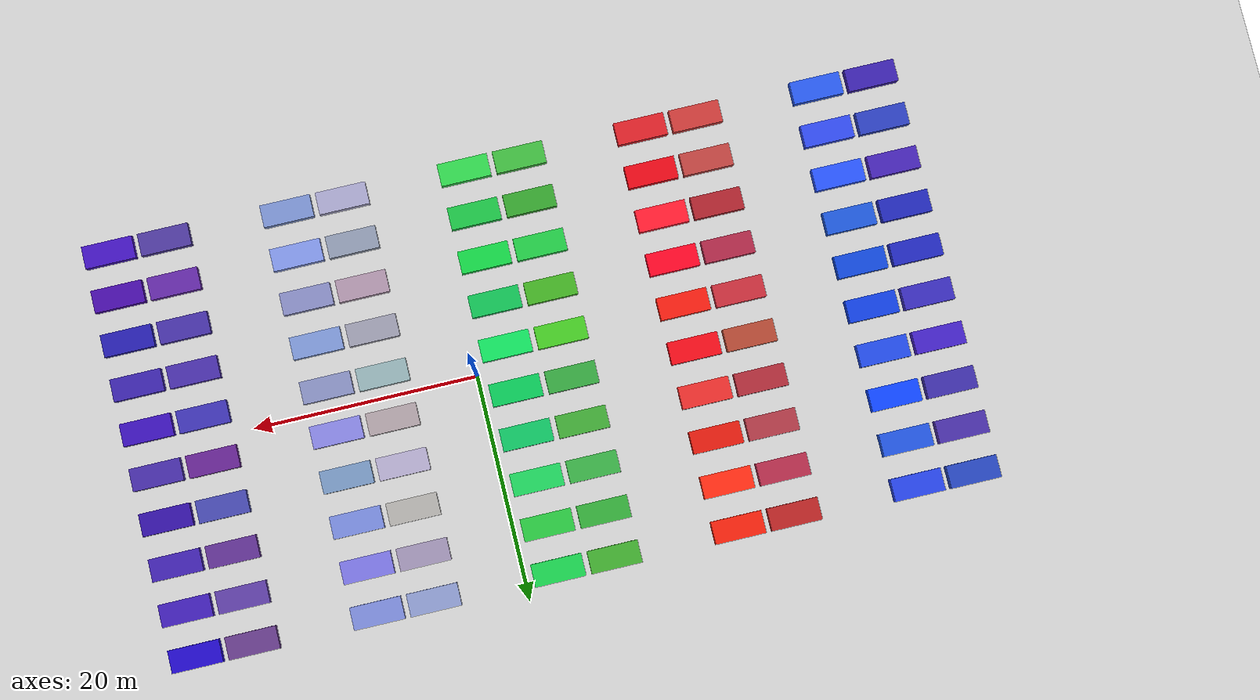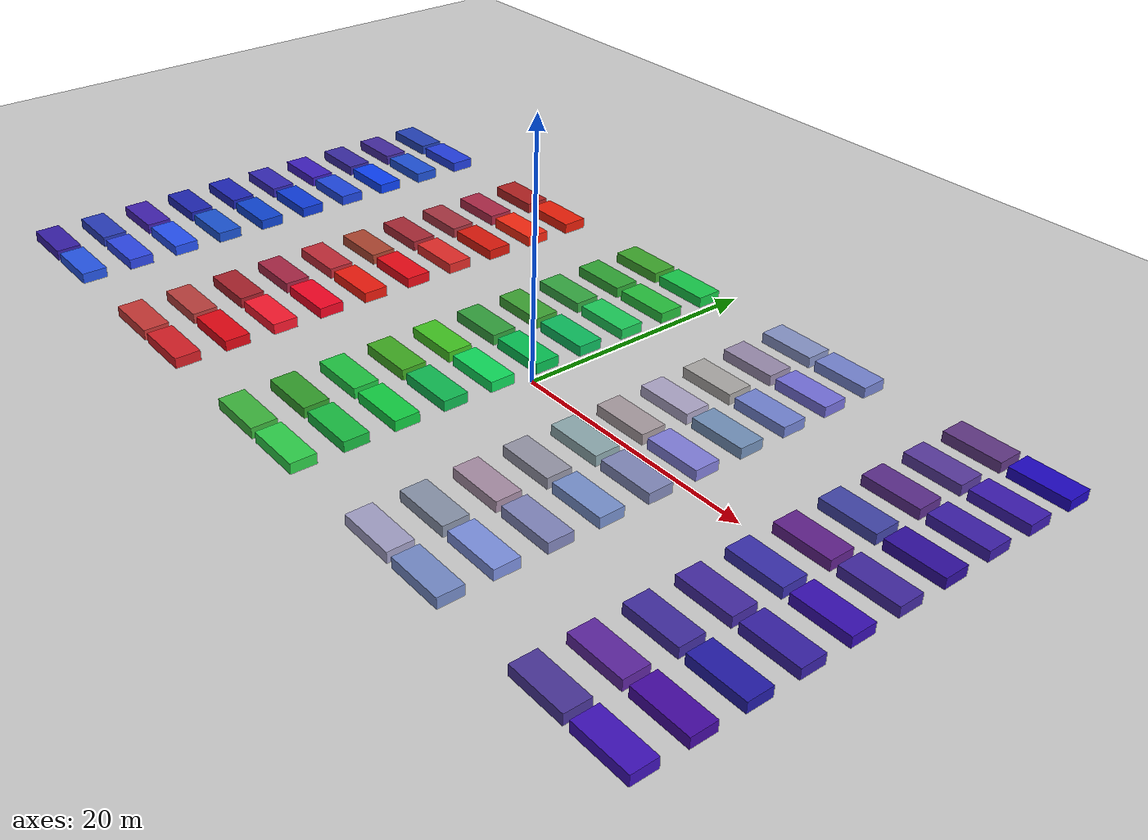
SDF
<?xml version="1.0" ?>
<sdf version="1.6">
  <world name="parking_lot">

    <physics name="1ms" type="ignored">
      <max_step_size>0.001</max_step_size>
      <real_time_factor>1.0</real_time_factor>
    </physics>

    <plugin filename="ignition-gazebo-contact-system" name="gz::sim::systems::Contact" />
    <plugin filename="ignition-gazebo-imu-system" name="gz::sim::systems::Imu" />
    <plugin filename="ignition-gazebo-physics-system" name="gz::sim::systems::Physics" />
    <plugin filename="ignition-gazebo-scene-broadcaster-system" name="gz::sim::systems::SceneBroadcaster" />
    <plugin filename="ignition-gazebo-sensors-system" name="gz::sim::systems::Sensors" />
    <plugin filename="ignition-gazebo-user-commands-system" name="gz::sim::systems::UserCommands" />

    <spherical_coordinates>
      <surface_model>EARTH_WGS84</surface_model>
      <world_frame_orientation>ENU</world_frame_orientation>
      <latitude_deg>50.088384</latitude_deg>
      <longitude_deg>19.939128</longitude_deg>
      <elevation>0</elevation>
      <heading_deg>0</heading_deg>
    </spherical_coordinates>

    <light type="directional" name="sun">
      <cast_shadows>true</cast_shadows>
      <pose>0 0 10 0 0 0</pose>
      <diffuse>0.8 0.8 0.8 1</diffuse>
      <specular>0.2 0.2 0.2 1</specular>
      <attenuation>
        <range>1000</range>
        <constant>0.9</constant>
        <linear>0.01</linear>
        <quadratic>0.001</quadratic>
      </attenuation>
      <direction>-0.5 0.1 -0.9</direction>
    </light>

    <model name="ground_plane">
      <static>true</static>
      <link name="link">
        <collision name="collision">
          <geometry>
            <plane>
              <normal>0 0 1</normal>
              <size>100 100</size>
            </plane>
          </geometry>
        </collision>
        <visual name="visual">
          <geometry>
            <plane>
              <normal>0 0 1</normal>
              <size>100 100</size>
            </plane>
          </geometry>
          <material>
            <ambient>0.8 0.8 0.8 1</ambient>
            <diffuse>0.8 0.8 0.8 1</diffuse>
            <specular>0.8 0.8 0.8 1</specular>
          </material>
        </visual>
      </link>
    </model>

    <model name="car_0_0">
      <static>true</static>
      <pose>-40.0 -18.0 0 0 0 0</pose>
      <link name="body">
        <collision name="collision">
          <geometry>
            <box>
              <size>4.5 2.0 1.5</size>
            </box>
          </geometry>
        </collision>
        <visual name="visual">
          <geometry>
            <box>
              <size>4.5 2.0 1.5</size>
            </box>
          </geometry>
          <material>
            <ambient>0.22 0.12 0.66 1</ambient>
            <diffuse>0.22 0.12 0.66 1</diffuse>
          </material>
        </visual>
      </link>
    </model>
    <model name="car_0_1">
      <static>true</static>
      <pose>-40.0 -14.0 0 0 0 0</pose>
      <link name="body">
        <collision name="collision">
          <geometry>
            <box>
              <size>4.5 2.0 1.5</size>
            </box>
          </geometry>
        </collision>
        <visual name="visual">
          <geometry>
            <box>
              <size>4.5 2.0 1.5</size>
            </box>
          </geometry>
          <material>
            <ambient>0.16 0.24 0.73 1</ambient>
            <diffuse>0.16 0.24 0.73 1</diffuse>
          </material>
        </visual>
      </link>
    </model>
    <model name="car_0_2">
      <static>true</static>
      <pose>-40.0 -10.0 0 0 0 0</pose>
      <link name="body">
        <collision name="collision">
          <geometry>
            <box>
              <size>4.5 2.0 1.5</size>
            </box>
          </geometry>
        </collision>
        <visual name="visual">
          <geometry>
            <box>
              <size>4.5 2.0 1.5</size>
            </box>
          </geometry>
          <material>
            <ambient>0.26 0.13 0.69 1</ambient>
            <diffuse>0.26 0.13 0.69 1</diffuse>
          </material>
        </visual>
      </link>
    </model>
    <model name="car_0_3">
      <static>true</static>
      <pose>-40.0 -6.0 0 0 0 0</pose>
      <link name="body">
        <collision name="collision">
          <geometry>
            <box>
              <size>4.5 2.0 1.5</size>
            </box>
          </geometry>
        </collision>
        <visual name="visual">
          <geometry>
            <box>
              <size>4.5 2.0 1.5</size>
            </box>
          </geometry>
          <material>
            <ambient>0.12 0.15 0.70 1</ambient>
            <diffuse>0.12 0.15 0.70 1</diffuse>
          </material>
        </visual>
      </link>
    </model>
    <model name="car_0_4">
      <static>true</static>
      <pose>-40.0 -2.0 0 0 0 0</pose>
      <link name="body">
        <collision name="collision">
          <geometry>
            <box>
              <size>4.5 2.0 1.5</size>
            </box>
          </geometry>
        </collision>
        <visual name="visual">
          <geometry>
            <box>
              <size>4.5 2.0 1.5</size>
            </box>
          </geometry>
          <material>
            <ambient>0.12 0.15 0.72 1</ambient>
            <diffuse>0.12 0.15 0.72 1</diffuse>
          </material>
        </visual>
      </link>
    </model>
    <model name="car_0_5">
      <static>true</static>
      <pose>-40.0 2.0 0 0 0 0</pose>
      <link name="body">
        <collision name="collision">
          <geometry>
            <box>
              <size>4.5 2.0 1.5</size>
            </box>
          </geometry>
        </collision>
        <visual name="visual">
          <geometry>
            <box>
              <size>4.5 2.0 1.5</size>
            </box>
          </geometry>
          <material>
            <ambient>0.21 0.16 0.71 1</ambient>
            <diffuse>0.21 0.16 0.71 1</diffuse>
          </material>
        </visual>
      </link>
    </model>
    <model name="car_0_6">
      <static>true</static>
      <pose>-40.0 6.0 0 0 0 0</pose>
      <link name="body">
        <collision name="collision">
          <geometry>
            <box>
              <size>4.5 2.0 1.5</size>
            </box>
          </geometry>
        </collision>
        <visual name="visual">
          <geometry>
            <box>
              <size>4.5 2.0 1.5</size>
            </box>
          </geometry>
          <material>
            <ambient>0.25 0.12 0.75 1</ambient>
            <diffuse>0.25 0.12 0.75 1</diffuse>
          </material>
        </visual>
      </link>
    </model>
    <model name="car_0_7">
      <static>true</static>
      <pose>-40.0 10.0 0 0 0 0</pose>
      <link name="body">
        <collision name="collision">
          <geometry>
            <box>
              <size>4.5 2.0 1.5</size>
            </box>
          </geometry>
        </collision>
        <visual name="visual">
          <geometry>
            <box>
              <size>4.5 2.0 1.5</size>
            </box>
          </geometry>
          <material>
            <ambient>0.23 0.17 0.64 1</ambient>
            <diffuse>0.23 0.17 0.64 1</diffuse>
          </material>
        </visual>
      </link>
    </model>
    <model name="car_0_8">
      <static>true</static>
      <pose>-40.0 14.0 0 0 0 0</pose>
      <link name="body">
        <collision name="collision">
          <geometry>
            <box>
              <size>4.5 2.0 1.5</size>
            </box>
          </geometry>
        </collision>
        <visual name="visual">
          <geometry>
            <box>
              <size>4.5 2.0 1.5</size>
            </box>
          </geometry>
          <material>
            <ambient>0.27 0.17 0.63 1</ambient>
            <diffuse>0.27 0.17 0.63 1</diffuse>
          </material>
        </visual>
      </link>
    </model>
    <model name="car_0_9">
      <static>true</static>
      <pose>-40.0 18.0 0 0 0 0</pose>
      <link name="body">
        <collision name="collision">
          <geometry>
            <box>
              <size>4.5 2.0 1.5</size>
            </box>
          </geometry>
        </collision>
        <visual name="visual">
          <geometry>
            <box>
              <size>4.5 2.0 1.5</size>
            </box>
          </geometry>
          <material>
            <ambient>0.14 0.26 0.72 1</ambient>
            <diffuse>0.14 0.26 0.72 1</diffuse>
          </material>
        </visual>
      </link>
    </model>
    <model name="car_1_0">
      <static>true</static>
      <pose>-35.0 -18.0 0 0 0 0</pose>
      <link name="body">
        <collision name="collision">
          <geometry>
            <box>
              <size>4.5 2.0 1.5</size>
            </box>
          </geometry>
        </collision>
        <visual name="visual">
          <geometry>
            <box>
              <size>4.5 2.0 1.5</size>
            </box>
          </geometry>
          <material>
            <ambient>0.15 0.34 0.91 1</ambient>
            <diffuse>0.15 0.34 0.91 1</diffuse>
          </material>
        </visual>
      </link>
    </model>
    <model name="car_1_1">
      <static>true</static>
      <pose>-35.0 -14.0 0 0 0 0</pose>
      <link name="body">
        <collision name="collision">
          <geometry>
            <box>
              <size>4.5 2.0 1.5</size>
            </box>
          </geometry>
        </collision>
        <visual name="visual">
          <geometry>
            <box>
              <size>4.5 2.0 1.5</size>
            </box>
          </geometry>
          <material>
            <ambient>0.18 0.28 0.91 1</ambient>
            <diffuse>0.18 0.28 0.91 1</diffuse>
          </material>
        </visual>
      </link>
    </model>
    <model name="car_1_2">
      <static>true</static>
      <pose>-35.0 -10.0 0 0 0 0</pose>
      <link name="body">
        <collision name="collision">
          <geometry>
            <box>
              <size>4.5 2.0 1.5</size>
            </box>
          </geometry>
        </collision>
        <visual name="visual">
          <geometry>
            <box>
              <size>4.5 2.0 1.5</size>
            </box>
          </geometry>
          <material>
            <ambient>0.15 0.32 0.96 1</ambient>
            <diffuse>0.15 0.32 0.96 1</diffuse>
          </material>
        </visual>
      </link>
    </model>
    <model name="car_1_3">
      <static>true</static>
      <pose>-35.0 -6.0 0 0 0 0</pose>
      <link name="body">
        <collision name="collision">
          <geometry>
            <box>
              <size>4.5 2.0 1.5</size>
            </box>
          </geometry>
        </collision>
        <visual name="visual">
          <geometry>
            <box>
              <size>4.5 2.0 1.5</size>
            </box>
          </geometry>
          <material>
            <ambient>0.11 0.33 0.83 1</ambient>
            <diffuse>0.11 0.33 0.83 1</diffuse>
          </material>
        </visual>
      </link>
    </model>
    <model name="car_1_4">
      <static>true</static>
      <pose>-35.0 -2.0 0 0 0 0</pose>
      <link name="body">
        <collision name="collision">
          <geometry>
            <box>
              <size>4.5 2.0 1.5</size>
            </box>
          </geometry>
        </collision>
        <visual name="visual">
          <geometry>
            <box>
              <size>4.5 2.0 1.5</size>
            </box>
          </geometry>
          <material>
            <ambient>0.06 0.27 0.83 1</ambient>
            <diffuse>0.06 0.27 0.83 1</diffuse>
          </material>
        </visual>
      </link>
    </model>
    <model name="car_1_5">
      <static>true</static>
      <pose>-35.0 2.0 0 0 0 0</pose>
      <link name="body">
        <collision name="collision">
          <geometry>
            <box>
              <size>4.5 2.0 1.5</size>
            </box>
          </geometry>
        </collision>
        <visual name="visual">
          <geometry>
            <box>
              <size>4.5 2.0 1.5</size>
            </box>
          </geometry>
          <material>
            <ambient>0.06 0.24 0.86 1</ambient>
            <diffuse>0.06 0.24 0.86 1</diffuse>
          </material>
        </visual>
      </link>
    </model>
    <model name="car_1_6">
      <static>true</static>
      <pose>-35.0 6.0 0 0 0 0</pose>
      <link name="body">
        <collision name="collision">
          <geometry>
            <box>
              <size>4.5 2.0 1.5</size>
            </box>
          </geometry>
        </collision>
        <visual name="visual">
          <geometry>
            <box>
              <size>4.5 2.0 1.5</size>
            </box>
          </geometry>
          <material>
            <ambient>0.12 0.28 0.88 1</ambient>
            <diffuse>0.12 0.28 0.88 1</diffuse>
          </material>
        </visual>
      </link>
    </model>
    <model name="car_1_7">
      <static>true</static>
      <pose>-35.0 10.0 0 0 0 0</pose>
      <link name="body">
        <collision name="collision">
          <geometry>
            <box>
              <size>4.5 2.0 1.5</size>
            </box>
          </geometry>
        </collision>
        <visual name="visual">
          <geometry>
            <box>
              <size>4.5 2.0 1.5</size>
            </box>
          </geometry>
          <material>
            <ambient>0.05 0.26 0.97 1</ambient>
            <diffuse>0.05 0.26 0.97 1</diffuse>
          </material>
        </visual>
      </link>
    </model>
    <model name="car_1_8">
      <static>true</static>
      <pose>-35.0 14.0 0 0 0 0</pose>
      <link name="body">
        <collision name="collision">
          <geometry>
            <box>
              <size>4.5 2.0 1.5</size>
            </box>
          </geometry>
        </collision>
        <visual name="visual">
          <geometry>
            <box>
              <size>4.5 2.0 1.5</size>
            </box>
          </geometry>
          <material>
            <ambient>0.12 0.32 0.85 1</ambient>
            <diffuse>0.12 0.32 0.85 1</diffuse>
          </material>
        </visual>
      </link>
    </model>
    <model name="car_1_9">
      <static>true</static>
      <pose>-35.0 18.0 0 0 0 0</pose>
      <link name="body">
        <collision name="collision">
          <geometry>
            <box>
              <size>4.5 2.0 1.5</size>
            </box>
          </geometry>
        </collision>
        <visual name="visual">
          <geometry>
            <box>
              <size>4.5 2.0 1.5</size>
            </box>
          </geometry>
          <material>
            <ambient>0.14 0.25 0.88 1</ambient>
            <diffuse>0.14 0.25 0.88 1</diffuse>
          </material>
        </visual>
      </link>
    </model>
    <model name="car_2_0">
      <static>true</static>
      <pose>-24.0 -18.0 0 0 0 0</pose>
      <link name="body">
        <collision name="collision">
          <geometry>
            <box>
              <size>4.5 2.0 1.5</size>
            </box>
          </geometry>
        </collision>
        <visual name="visual">
          <geometry>
            <box>
              <size>4.5 2.0 1.5</size>
            </box>
          </geometry>
          <material>
            <ambient>0.78 0.22 0.21 1</ambient>
            <diffuse>0.78 0.22 0.21 1</diffuse>
          </material>
        </visual>
      </link>
    </model>
    <model name="car_2_1">
      <static>true</static>
      <pose>-24.0 -14.0 0 0 0 0</pose>
      <link name="body">
        <collision name="collision">
          <geometry>
            <box>
              <size>4.5 2.0 1.5</size>
            </box>
          </geometry>
        </collision>
        <visual name="visual">
          <geometry>
            <box>
              <size>4.5 2.0 1.5</size>
            </box>
          </geometry>
          <material>
            <ambient>0.73 0.25 0.24 1</ambient>
            <diffuse>0.73 0.25 0.24 1</diffuse>
          </material>
        </visual>
      </link>
    </model>
    <model name="car_2_2">
      <static>true</static>
      <pose>-24.0 -10.0 0 0 0 0</pose>
      <link name="body">
        <collision name="collision">
          <geometry>
            <box>
              <size>4.5 2.0 1.5</size>
            </box>
          </geometry>
        </collision>
        <visual name="visual">
          <geometry>
            <box>
              <size>4.5 2.0 1.5</size>
            </box>
          </geometry>
          <material>
            <ambient>0.66 0.13 0.17 1</ambient>
            <diffuse>0.66 0.13 0.17 1</diffuse>
          </material>
        </visual>
      </link>
    </model>
    <model name="car_2_3">
      <static>true</static>
      <pose>-24.0 -6.0 0 0 0 0</pose>
      <link name="body">
        <collision name="collision">
          <geometry>
            <box>
              <size>4.5 2.0 1.5</size>
            </box>
          </geometry>
        </collision>
        <visual name="visual">
          <geometry>
            <box>
              <size>4.5 2.0 1.5</size>
            </box>
          </geometry>
          <material>
            <ambient>0.66 0.15 0.27 1</ambient>
            <diffuse>0.66 0.15 0.27 1</diffuse>
          </material>
        </visual>
      </link>
    </model>
    <model name="car_2_4">
      <static>true</static>
      <pose>-24.0 -2.0 0 0 0 0</pose>
      <link name="body">
        <collision name="collision">
          <geometry>
            <box>
              <size>4.5 2.0 1.5</size>
            </box>
          </geometry>
        </collision>
        <visual name="visual">
          <geometry>
            <box>
              <size>4.5 2.0 1.5</size>
            </box>
          </geometry>
          <material>
            <ambient>0.76 0.17 0.22 1</ambient>
            <diffuse>0.76 0.17 0.22 1</diffuse>
          </material>
        </visual>
      </link>
    </model>
    <model name="car_2_5">
      <static>true</static>
      <pose>-24.0 2.0 0 0 0 0</pose>
      <link name="body">
        <collision name="collision">
          <geometry>
            <box>
              <size>4.5 2.0 1.5</size>
            </box>
          </geometry>
        </collision>
        <visual name="visual">
          <geometry>
            <box>
              <size>4.5 2.0 1.5</size>
            </box>
          </geometry>
          <material>
            <ambient>0.68 0.27 0.19 1</ambient>
            <diffuse>0.68 0.27 0.19 1</diffuse>
          </material>
        </visual>
      </link>
    </model>
    <model name="car_2_6">
      <static>true</static>
      <pose>-24.0 6.0 0 0 0 0</pose>
      <link name="body">
        <collision name="collision">
          <geometry>
            <box>
              <size>4.5 2.0 1.5</size>
            </box>
          </geometry>
        </collision>
        <visual name="visual">
          <geometry>
            <box>
              <size>4.5 2.0 1.5</size>
            </box>
          </geometry>
          <material>
            <ambient>0.66 0.16 0.21 1</ambient>
            <diffuse>0.66 0.16 0.21 1</diffuse>
          </material>
        </visual>
      </link>
    </model>
    <model name="car_2_7">
      <static>true</static>
      <pose>-24.0 10.0 0 0 0 0</pose>
      <link name="body">
        <collision name="collision">
          <geometry>
            <box>
              <size>4.5 2.0 1.5</size>
            </box>
          </geometry>
        </collision>
        <visual name="visual">
          <geometry>
            <box>
              <size>4.5 2.0 1.5</size>
            </box>
          </geometry>
          <material>
            <ambient>0.66 0.21 0.26 1</ambient>
            <diffuse>0.66 0.21 0.26 1</diffuse>
          </material>
        </visual>
      </link>
    </model>
    <model name="car_2_8">
      <static>true</static>
      <pose>-24.0 14.0 0 0 0 0</pose>
      <link name="body">
        <collision name="collision">
          <geometry>
            <box>
              <size>4.5 2.0 1.5</size>
            </box>
          </geometry>
        </collision>
        <visual name="visual">
          <geometry>
            <box>
              <size>4.5 2.0 1.5</size>
            </box>
          </geometry>
          <material>
            <ambient>0.68 0.16 0.28 1</ambient>
            <diffuse>0.68 0.16 0.28 1</diffuse>
          </material>
        </visual>
      </link>
    </model>
    <model name="car_2_9">
      <static>true</static>
      <pose>-24.0 18.0 0 0 0 0</pose>
      <link name="body">
        <collision name="collision">
          <geometry>
            <box>
              <size>4.5 2.0 1.5</size>
            </box>
          </geometry>
        </collision>
        <visual name="visual">
          <geometry>
            <box>
              <size>4.5 2.0 1.5</size>
            </box>
          </geometry>
          <material>
            <ambient>0.70 0.13 0.13 1</ambient>
            <diffuse>0.70 0.13 0.13 1</diffuse>
          </material>
        </visual>
      </link>
    </model>
    <model name="car_3_0">
      <static>true</static>
      <pose>-19.0 -18.0 0 0 0 0</pose>
      <link name="body">
        <collision name="collision">
          <geometry>
            <box>
              <size>4.5 2.0 1.5</size>
            </box>
          </geometry>
        </collision>
        <visual name="visual">
          <geometry>
            <box>
              <size>4.5 2.0 1.5</size>
            </box>
          </geometry>
          <material>
            <ambient>0.84 0.12 0.15 1</ambient>
            <diffuse>0.84 0.12 0.15 1</diffuse>
          </material>
        </visual>
      </link>
    </model>
    <model name="car_3_1">
      <static>true</static>
      <pose>-19.0 -14.0 0 0 0 0</pose>
      <link name="body">
        <collision name="collision">
          <geometry>
            <box>
              <size>4.5 2.0 1.5</size>
            </box>
          </geometry>
        </collision>
        <visual name="visual">
          <geometry>
            <box>
              <size>4.5 2.0 1.5</size>
            </box>
          </geometry>
          <material>
            <ambient>0.89 0.03 0.08 1</ambient>
            <diffuse>0.89 0.03 0.08 1</diffuse>
          </material>
        </visual>
      </link>
    </model>
    <model name="car_3_2">
      <static>true</static>
      <pose>-19.0 -10.0 0 0 0 0</pose>
      <link name="body">
        <collision name="collision">
          <geometry>
            <box>
              <size>4.5 2.0 1.5</size>
            </box>
          </geometry>
        </collision>
        <visual name="visual">
          <geometry>
            <box>
              <size>4.5 2.0 1.5</size>
            </box>
          </geometry>
          <material>
            <ambient>0.98 0.10 0.18 1</ambient>
            <diffuse>0.98 0.10 0.18 1</diffuse>
          </material>
        </visual>
      </link>
    </model>
    <model name="car_3_3">
      <static>true</static>
      <pose>-19.0 -6.0 0 0 0 0</pose>
      <link name="body">
        <collision name="collision">
          <geometry>
            <box>
              <size>4.5 2.0 1.5</size>
            </box>
          </geometry>
        </collision>
        <visual name="visual">
          <geometry>
            <box>
              <size>4.5 2.0 1.5</size>
            </box>
          </geometry>
          <material>
            <ambient>0.96 0.02 0.14 1</ambient>
            <diffuse>0.96 0.02 0.14 1</diffuse>
          </material>
        </visual>
      </link>
    </model>
    <model name="car_3_4">
      <static>true</static>
      <pose>-19.0 -2.0 0 0 0 0</pose>
      <link name="body">
        <collision name="collision">
          <geometry>
            <box>
              <size>4.5 2.0 1.5</size>
            </box>
          </geometry>
        </collision>
        <visual name="visual">
          <geometry>
            <box>
              <size>4.5 2.0 1.5</size>
            </box>
          </geometry>
          <material>
            <ambient>0.93 0.11 0.06 1</ambient>
            <diffuse>0.93 0.11 0.06 1</diffuse>
          </material>
        </visual>
      </link>
    </model>
    <model name="car_3_5">
      <static>true</static>
      <pose>-19.0 2.0 0 0 0 0</pose>
      <link name="body">
        <collision name="collision">
          <geometry>
            <box>
              <size>4.5 2.0 1.5</size>
            </box>
          </geometry>
        </collision>
        <visual name="visual">
          <geometry>
            <box>
              <size>4.5 2.0 1.5</size>
            </box>
          </geometry>
          <material>
            <ambient>0.92 0.04 0.09 1</ambient>
            <diffuse>0.92 0.04 0.09 1</diffuse>
          </material>
        </visual>
      </link>
    </model>
    <model name="car_3_6">
      <static>true</static>
      <pose>-19.0 6.0 0 0 0 0</pose>
      <link name="body">
        <collision name="collision">
          <geometry>
            <box>
              <size>4.5 2.0 1.5</size>
            </box>
          </geometry>
        </collision>
        <visual name="visual">
          <geometry>
            <box>
              <size>4.5 2.0 1.5</size>
            </box>
          </geometry>
          <material>
            <ambient>0.89 0.17 0.16 1</ambient>
            <diffuse>0.89 0.17 0.16 1</diffuse>
          </material>
        </visual>
      </link>
    </model>
    <model name="car_3_7">
      <static>true</static>
      <pose>-19.0 10.0 0 0 0 0</pose>
      <link name="body">
        <collision name="collision">
          <geometry>
            <box>
              <size>4.5 2.0 1.5</size>
            </box>
          </geometry>
        </collision>
        <visual name="visual">
          <geometry>
            <box>
              <size>4.5 2.0 1.5</size>
            </box>
          </geometry>
          <material>
            <ambient>0.86 0.10 0.05 1</ambient>
            <diffuse>0.86 0.10 0.05 1</diffuse>
          </material>
        </visual>
      </link>
    </model>
    <model name="car_3_8">
      <static>true</static>
      <pose>-19.0 14.0 0 0 0 0</pose>
      <link name="body">
        <collision name="collision">
          <geometry>
            <box>
              <size>4.5 2.0 1.5</size>
            </box>
          </geometry>
        </collision>
        <visual name="visual">
          <geometry>
            <box>
              <size>4.5 2.0 1.5</size>
            </box>
          </geometry>
          <material>
            <ambient>0.97 0.16 0.07 1</ambient>
            <diffuse>0.97 0.16 0.07 1</diffuse>
          </material>
        </visual>
      </link>
    </model>
    <model name="car_3_9">
      <static>true</static>
      <pose>-19.0 18.0 0 0 0 0</pose>
      <link name="body">
        <collision name="collision">
          <geometry>
            <box>
              <size>4.5 2.0 1.5</size>
            </box>
          </geometry>
        </collision>
        <visual name="visual">
          <geometry>
            <box>
              <size>4.5 2.0 1.5</size>
            </box>
          </geometry>
          <material>
            <ambient>0.92 0.12 0.04 1</ambient>
            <diffuse>0.92 0.12 0.04 1</diffuse>
          </material>
        </visual>
      </link>
    </model>
    <model name="car_4_0">
      <static>true</static>
      <pose>-8.0 -18.0 0 0 0 0</pose>
      <link name="body">
        <collision name="collision">
          <geometry>
            <box>
              <size>4.5 2.0 1.5</size>
            </box>
          </geometry>
        </collision>
        <visual name="visual">
          <geometry>
            <box>
              <size>4.5 2.0 1.5</size>
            </box>
          </geometry>
          <material>
            <ambient>0.24 0.71 0.24 1</ambient>
            <diffuse>0.24 0.71 0.24 1</diffuse>
          </material>
        </visual>
      </link>
    </model>
    <model name="car_4_1">
      <static>true</static>
      <pose>-8.0 -14.0 0 0 0 0</pose>
      <link name="body">
        <collision name="collision">
          <geometry>
            <box>
              <size>4.5 2.0 1.5</size>
            </box>
          </geometry>
        </collision>
        <visual name="visual">
          <geometry>
            <box>
              <size>4.5 2.0 1.5</size>
            </box>
          </geometry>
          <material>
            <ambient>0.20 0.62 0.17 1</ambient>
            <diffuse>0.20 0.62 0.17 1</diffuse>
          </material>
        </visual>
      </link>
    </model>
    <model name="car_4_2">
      <static>true</static>
      <pose>-8.0 -10.0 0 0 0 0</pose>
      <link name="body">
        <collision name="collision">
          <geometry>
            <box>
              <size>4.5 2.0 1.5</size>
            </box>
          </geometry>
        </collision>
        <visual name="visual">
          <geometry>
            <box>
              <size>4.5 2.0 1.5</size>
            </box>
          </geometry>
          <material>
            <ambient>0.12 0.77 0.26 1</ambient>
            <diffuse>0.12 0.77 0.26 1</diffuse>
          </material>
        </visual>
      </link>
    </model>
    <model name="car_4_3">
      <static>true</static>
      <pose>-8.0 -6.0 0 0 0 0</pose>
      <link name="body">
        <collision name="collision">
          <geometry>
            <box>
              <size>4.5 2.0 1.5</size>
            </box>
          </geometry>
        </collision>
        <visual name="visual">
          <geometry>
            <box>
              <size>4.5 2.0 1.5</size>
            </box>
          </geometry>
          <material>
            <ambient>0.25 0.67 0.13 1</ambient>
            <diffuse>0.25 0.67 0.13 1</diffuse>
          </material>
        </visual>
      </link>
    </model>
    <model name="car_4_4">
      <static>true</static>
      <pose>-8.0 -2.0 0 0 0 0</pose>
      <link name="body">
        <collision name="collision">
          <geometry>
            <box>
              <size>4.5 2.0 1.5</size>
            </box>
          </geometry>
        </collision>
        <visual name="visual">
          <geometry>
            <box>
              <size>4.5 2.0 1.5</size>
            </box>
          </geometry>
          <material>
            <ambient>0.26 0.77 0.13 1</ambient>
            <diffuse>0.26 0.77 0.13 1</diffuse>
          </material>
        </visual>
      </link>
    </model>
    <model name="car_4_5">
      <static>true</static>
      <pose>-8.0 2.0 0 0 0 0</pose>
      <link name="body">
        <collision name="collision">
          <geometry>
            <box>
              <size>4.5 2.0 1.5</size>
            </box>
          </geometry>
        </collision>
        <visual name="visual">
          <geometry>
            <box>
              <size>4.5 2.0 1.5</size>
            </box>
          </geometry>
          <material>
            <ambient>0.20 0.63 0.24 1</ambient>
            <diffuse>0.20 0.63 0.24 1</diffuse>
          </material>
        </visual>
      </link>
    </model>
    <model name="car_4_6">
      <static>true</static>
      <pose>-8.0 6.0 0 0 0 0</pose>
      <link name="body">
        <collision name="collision">
          <geometry>
            <box>
              <size>4.5 2.0 1.5</size>
            </box>
          </geometry>
        </collision>
        <visual name="visual">
          <geometry>
            <box>
              <size>4.5 2.0 1.5</size>
            </box>
          </geometry>
          <material>
            <ambient>0.24 0.64 0.20 1</ambient>
            <diffuse>0.24 0.64 0.20 1</diffuse>
          </material>
        </visual>
      </link>
    </model>
    <model name="car_4_7">
      <static>true</static>
      <pose>-8.0 10.0 0 0 0 0</pose>
      <link name="body">
        <collision name="collision">
          <geometry>
            <box>
              <size>4.5 2.0 1.5</size>
            </box>
          </geometry>
        </collision>
        <visual name="visual">
          <geometry>
            <box>
              <size>4.5 2.0 1.5</size>
            </box>
          </geometry>
          <material>
            <ambient>0.21 0.66 0.26 1</ambient>
            <diffuse>0.21 0.66 0.26 1</diffuse>
          </material>
        </visual>
      </link>
    </model>
    <model name="car_4_8">
      <static>true</static>
      <pose>-8.0 14.0 0 0 0 0</pose>
      <link name="body">
        <collision name="collision">
          <geometry>
            <box>
              <size>4.5 2.0 1.5</size>
            </box>
          </geometry>
        </collision>
        <visual name="visual">
          <geometry>
            <box>
              <size>4.5 2.0 1.5</size>
            </box>
          </geometry>
          <material>
            <ambient>0.19 0.65 0.21 1</ambient>
            <diffuse>0.19 0.65 0.21 1</diffuse>
          </material>
        </visual>
      </link>
    </model>
    <model name="car_4_9">
      <static>true</static>
      <pose>-8.0 18.0 0 0 0 0</pose>
      <link name="body">
        <collision name="collision">
          <geometry>
            <box>
              <size>4.5 2.0 1.5</size>
            </box>
          </geometry>
        </collision>
        <visual name="visual">
          <geometry>
            <box>
              <size>4.5 2.0 1.5</size>
            </box>
          </geometry>
          <material>
            <ambient>0.24 0.65 0.17 1</ambient>
            <diffuse>0.24 0.65 0.17 1</diffuse>
          </material>
        </visual>
      </link>
    </model>
    <model name="car_5_0">
      <static>true</static>
      <pose>-3.0 -18.0 0 0 0 0</pose>
      <link name="body">
        <collision name="collision">
          <geometry>
            <box>
              <size>4.5 2.0 1.5</size>
            </box>
          </geometry>
        </collision>
        <visual name="visual">
          <geometry>
            <box>
              <size>4.5 2.0 1.5</size>
            </box>
          </geometry>
          <material>
            <ambient>0.18 0.82 0.29 1</ambient>
            <diffuse>0.18 0.82 0.29 1</diffuse>
          </material>
        </visual>
      </link>
    </model>
    <model name="car_5_1">
      <static>true</static>
      <pose>-3.0 -14.0 0 0 0 0</pose>
      <link name="body">
        <collision name="collision">
          <geometry>
            <box>
              <size>4.5 2.0 1.5</size>
            </box>
          </geometry>
        </collision>
        <visual name="visual">
          <geometry>
            <box>
              <size>4.5 2.0 1.5</size>
            </box>
          </geometry>
          <material>
            <ambient>0.10 0.74 0.26 1</ambient>
            <diffuse>0.10 0.74 0.26 1</diffuse>
          </material>
        </visual>
      </link>
    </model>
    <model name="car_5_2">
      <static>true</static>
      <pose>-3.0 -10.0 0 0 0 0</pose>
      <link name="body">
        <collision name="collision">
          <geometry>
            <box>
              <size>4.5 2.0 1.5</size>
            </box>
          </geometry>
        </collision>
        <visual name="visual">
          <geometry>
            <box>
              <size>4.5 2.0 1.5</size>
            </box>
          </geometry>
          <material>
            <ambient>0.07 0.81 0.26 1</ambient>
            <diffuse>0.07 0.81 0.26 1</diffuse>
          </material>
        </visual>
      </link>
    </model>
    <model name="car_5_3">
      <static>true</static>
      <pose>-3.0 -6.0 0 0 0 0</pose>
      <link name="body">
        <collision name="collision">
          <geometry>
            <box>
              <size>4.5 2.0 1.5</size>
            </box>
          </geometry>
        </collision>
        <visual name="visual">
          <geometry>
            <box>
              <size>4.5 2.0 1.5</size>
            </box>
          </geometry>
          <material>
            <ambient>0.06 0.73 0.32 1</ambient>
            <diffuse>0.06 0.73 0.32 1</diffuse>
          </material>
        </visual>
      </link>
    </model>
    <model name="car_5_4">
      <static>true</static>
      <pose>-3.0 -2.0 0 0 0 0</pose>
      <link name="body">
        <collision name="collision">
          <geometry>
            <box>
              <size>4.5 2.0 1.5</size>
            </box>
          </geometry>
        </collision>
        <visual name="visual">
          <geometry>
            <box>
              <size>4.5 2.0 1.5</size>
            </box>
          </geometry>
          <material>
            <ambient>0.06 0.86 0.36 1</ambient>
            <diffuse>0.06 0.86 0.36 1</diffuse>
          </material>
        </visual>
      </link>
    </model>
    <model name="car_5_5">
      <static>true</static>
      <pose>-3.0 2.0 0 0 0 0</pose>
      <link name="body">
        <collision name="collision">
          <geometry>
            <box>
              <size>4.5 2.0 1.5</size>
            </box>
          </geometry>
        </collision>
        <visual name="visual">
          <geometry>
            <box>
              <size>4.5 2.0 1.5</size>
            </box>
          </geometry>
          <material>
            <ambient>0.03 0.76 0.33 1</ambient>
            <diffuse>0.03 0.76 0.33 1</diffuse>
          </material>
        </visual>
      </link>
    </model>
    <model name="car_5_6">
      <static>true</static>
      <pose>-3.0 6.0 0 0 0 0</pose>
      <link name="body">
        <collision name="collision">
          <geometry>
            <box>
              <size>4.5 2.0 1.5</size>
            </box>
          </geometry>
        </collision>
        <visual name="visual">
          <geometry>
            <box>
              <size>4.5 2.0 1.5</size>
            </box>
          </geometry>
          <material>
            <ambient>0.05 0.74 0.37 1</ambient>
            <diffuse>0.05 0.74 0.37 1</diffuse>
          </material>
        </visual>
      </link>
    </model>
    <model name="car_5_7">
      <static>true</static>
      <pose>-3.0 10.0 0 0 0 0</pose>
      <link name="body">
        <collision name="collision">
          <geometry>
            <box>
              <size>4.5 2.0 1.5</size>
            </box>
          </geometry>
        </collision>
        <visual name="visual">
          <geometry>
            <box>
              <size>4.5 2.0 1.5</size>
            </box>
          </geometry>
          <material>
            <ambient>0.11 0.80 0.35 1</ambient>
            <diffuse>0.11 0.80 0.35 1</diffuse>
          </material>
        </visual>
      </link>
    </model>
    <model name="car_5_8">
      <static>true</static>
      <pose>-3.0 14.0 0 0 0 0</pose>
      <link name="body">
        <collision name="collision">
          <geometry>
            <box>
              <size>4.5 2.0 1.5</size>
            </box>
          </geometry>
        </collision>
        <visual name="visual">
          <geometry>
            <box>
              <size>4.5 2.0 1.5</size>
            </box>
          </geometry>
          <material>
            <ambient>0.15 0.75 0.24 1</ambient>
            <diffuse>0.15 0.75 0.24 1</diffuse>
          </material>
        </visual>
      </link>
    </model>
    <model name="car_5_9">
      <static>true</static>
      <pose>-3.0 18.0 0 0 0 0</pose>
      <link name="body">
        <collision name="collision">
          <geometry>
            <box>
              <size>4.5 2.0 1.5</size>
            </box>
          </geometry>
        </collision>
        <visual name="visual">
          <geometry>
            <box>
              <size>4.5 2.0 1.5</size>
            </box>
          </geometry>
          <material>
            <ambient>0.09 0.79 0.29 1</ambient>
            <diffuse>0.09 0.79 0.29 1</diffuse>
          </material>
        </visual>
      </link>
    </model>
    <model name="car_6_0">
      <static>true</static>
      <pose>8.0 -18.0 0 0 0 0</pose>
      <link name="body">
        <collision name="collision">
          <geometry>
            <box>
              <size>4.5 2.0 1.5</size>
            </box>
          </geometry>
        </collision>
        <visual name="visual">
          <geometry>
            <box>
              <size>4.5 2.0 1.5</size>
            </box>
          </geometry>
          <material>
            <ambient>0.64 0.63 0.78 1</ambient>
            <diffuse>0.64 0.63 0.78 1</diffuse>
          </material>
        </visual>
      </link>
    </model>
    <model name="car_6_1">
      <static>true</static>
      <pose>8.0 -14.0 0 0 0 0</pose>
      <link name="body">
        <collision name="collision">
          <geometry>
            <box>
              <size>4.5 2.0 1.5</size>
            </box>
          </geometry>
        </collision>
        <visual name="visual">
          <geometry>
            <box>
              <size>4.5 2.0 1.5</size>
            </box>
          </geometry>
          <material>
            <ambient>0.54 0.58 0.67 1</ambient>
            <diffuse>0.54 0.58 0.67 1</diffuse>
          </material>
        </visual>
      </link>
    </model>
    <model name="car_6_2">
      <static>true</static>
      <pose>8.0 -10.0 0 0 0 0</pose>
      <link name="body">
        <collision name="collision">
          <geometry>
            <box>
              <size>4.5 2.0 1.5</size>
            </box>
          </geometry>
        </collision>
        <visual name="visual">
          <geometry>
            <box>
              <size>4.5 2.0 1.5</size>
            </box>
          </geometry>
          <material>
            <ambient>0.66 0.56 0.65 1</ambient>
            <diffuse>0.66 0.56 0.65 1</diffuse>
          </material>
        </visual>
      </link>
    </model>
    <model name="car_6_3">
      <static>true</static>
      <pose>8.0 -6.0 0 0 0 0</pose>
      <link name="body">
        <collision name="collision">
          <geometry>
            <box>
              <size>4.5 2.0 1.5</size>
            </box>
          </geometry>
        </collision>
        <visual name="visual">
          <geometry>
            <box>
              <size>4.5 2.0 1.5</size>
            </box>
          </geometry>
          <material>
            <ambient>0.59 0.59 0.66 1</ambient>
            <diffuse>0.59 0.59 0.66 1</diffuse>
          </material>
        </visual>
      </link>
    </model>
    <model name="car_6_4">
      <static>true</static>
      <pose>8.0 -2.0 0 0 0 0</pose>
      <link name="body">
        <collision name="collision">
          <geometry>
            <box>
              <size>4.5 2.0 1.5</size>
            </box>
          </geometry>
        </collision>
        <visual name="visual">
          <geometry>
            <box>
              <size>4.5 2.0 1.5</size>
            </box>
          </geometry>
          <material>
            <ambient>0.56 0.67 0.69 1</ambient>
            <diffuse>0.56 0.67 0.69 1</diffuse>
          </material>
        </visual>
      </link>
    </model>
    <model name="car_6_5">
      <static>true</static>
      <pose>8.0 2.0 0 0 0 0</pose>
      <link name="body">
        <collision name="collision">
          <geometry>
            <box>
              <size>4.5 2.0 1.5</size>
            </box>
          </geometry>
        </collision>
        <visual name="visual">
          <geometry>
            <box>
              <size>4.5 2.0 1.5</size>
            </box>
          </geometry>
          <material>
            <ambient>0.66 0.61 0.63 1</ambient>
            <diffuse>0.66 0.61 0.63 1</diffuse>
          </material>
        </visual>
      </link>
    </model>
    <model name="car_6_6">
      <static>true</static>
      <pose>8.0 6.0 0 0 0 0</pose>
      <link name="body">
        <collision name="collision">
          <geometry>
            <box>
              <size>4.5 2.0 1.5</size>
            </box>
          </geometry>
        </collision>
        <visual name="visual">
          <geometry>
            <box>
              <size>4.5 2.0 1.5</size>
            </box>
          </geometry>
          <material>
            <ambient>0.68 0.65 0.78 1</ambient>
            <diffuse>0.68 0.65 0.78 1</diffuse>
          </material>
        </visual>
      </link>
    </model>
    <model name="car_6_7">
      <static>true</static>
      <pose>8.0 10.0 0 0 0 0</pose>
      <link name="body">
        <collision name="collision">
          <geometry>
            <box>
              <size>4.5 2.0 1.5</size>
            </box>
          </geometry>
        </collision>
        <visual name="visual">
          <geometry>
            <box>
              <size>4.5 2.0 1.5</size>
            </box>
          </geometry>
          <material>
            <ambient>0.67 0.66 0.65 1</ambient>
            <diffuse>0.67 0.66 0.65 1</diffuse>
          </material>
        </visual>
      </link>
    </model>
    <model name="car_6_8">
      <static>true</static>
      <pose>8.0 14.0 0 0 0 0</pose>
      <link name="body">
        <collision name="collision">
          <geometry>
            <box>
              <size>4.5 2.0 1.5</size>
            </box>
          </geometry>
        </collision>
        <visual name="visual">
          <geometry>
            <box>
              <size>4.5 2.0 1.5</size>
            </box>
          </geometry>
          <material>
            <ambient>0.60 0.55 0.68 1</ambient>
            <diffuse>0.60 0.55 0.68 1</diffuse>
          </material>
        </visual>
      </link>
    </model>
    <model name="car_6_9">
      <static>true</static>
      <pose>8.0 18.0 0 0 0 0</pose>
      <link name="body">
        <collision name="collision">
          <geometry>
            <box>
              <size>4.5 2.0 1.5</size>
            </box>
          </geometry>
        </collision>
        <visual name="visual">
          <geometry>
            <box>
              <size>4.5 2.0 1.5</size>
            </box>
          </geometry>
          <material>
            <ambient>0.53 0.58 0.78 1</ambient>
            <diffuse>0.53 0.58 0.78 1</diffuse>
          </material>
        </visual>
      </link>
    </model>
    <model name="car_7_0">
      <static>true</static>
      <pose>13.0 -18.0 0 0 0 0</pose>
      <link name="body">
        <collision name="collision">
          <geometry>
            <box>
              <size>4.5 2.0 1.5</size>
            </box>
          </geometry>
        </collision>
        <visual name="visual">
          <geometry>
            <box>
              <size>4.5 2.0 1.5</size>
            </box>
          </geometry>
          <material>
            <ambient>0.46 0.55 0.79 1</ambient>
            <diffuse>0.46 0.55 0.79 1</diffuse>
          </material>
        </visual>
      </link>
    </model>
    <model name="car_7_1">
      <static>true</static>
      <pose>13.0 -14.0 0 0 0 0</pose>
      <link name="body">
        <collision name="collision">
          <geometry>
            <box>
              <size>4.5 2.0 1.5</size>
            </box>
          </geometry>
        </collision>
        <visual name="visual">
          <geometry>
            <box>
              <size>4.5 2.0 1.5</size>
            </box>
          </geometry>
          <material>
            <ambient>0.49 0.57 0.88 1</ambient>
            <diffuse>0.49 0.57 0.88 1</diffuse>
          </material>
        </visual>
      </link>
    </model>
    <model name="car_7_2">
      <static>true</static>
      <pose>13.0 -10.0 0 0 0 0</pose>
      <link name="body">
        <collision name="collision">
          <geometry>
            <box>
              <size>4.5 2.0 1.5</size>
            </box>
          </geometry>
        </collision>
        <visual name="visual">
          <geometry>
            <box>
              <size>4.5 2.0 1.5</size>
            </box>
          </geometry>
          <material>
            <ambient>0.51 0.53 0.74 1</ambient>
            <diffuse>0.51 0.53 0.74 1</diffuse>
          </material>
        </visual>
      </link>
    </model>
    <model name="car_7_3">
      <static>true</static>
      <pose>13.0 -6.0 0 0 0 0</pose>
      <link name="body">
        <collision name="collision">
          <geometry>
            <box>
              <size>4.5 2.0 1.5</size>
            </box>
          </geometry>
        </collision>
        <visual name="visual">
          <geometry>
            <box>
              <size>4.5 2.0 1.5</size>
            </box>
          </geometry>
          <material>
            <ambient>0.47 0.57 0.81 1</ambient>
            <diffuse>0.47 0.57 0.81 1</diffuse>
          </material>
        </visual>
      </link>
    </model>
    <model name="car_7_4">
      <static>true</static>
      <pose>13.0 -2.0 0 0 0 0</pose>
      <link name="body">
        <collision name="collision">
          <geometry>
            <box>
              <size>4.5 2.0 1.5</size>
            </box>
          </geometry>
        </collision>
        <visual name="visual">
          <geometry>
            <box>
              <size>4.5 2.0 1.5</size>
            </box>
          </geometry>
          <material>
            <ambient>0.51 0.54 0.73 1</ambient>
            <diffuse>0.51 0.54 0.73 1</diffuse>
          </material>
        </visual>
      </link>
    </model>
    <model name="car_7_5">
      <static>true</static>
      <pose>13.0 2.0 0 0 0 0</pose>
      <link name="body">
        <collision name="collision">
          <geometry>
            <box>
              <size>4.5 2.0 1.5</size>
            </box>
          </geometry>
        </collision>
        <visual name="visual">
          <geometry>
            <box>
              <size>4.5 2.0 1.5</size>
            </box>
          </geometry>
          <material>
            <ambient>0.51 0.50 0.86 1</ambient>
            <diffuse>0.51 0.50 0.86 1</diffuse>
          </material>
        </visual>
      </link>
    </model>
    <model name="car_7_6">
      <static>true</static>
      <pose>13.0 6.0 0 0 0 0</pose>
      <link name="body">
        <collision name="collision">
          <geometry>
            <box>
              <size>4.5 2.0 1.5</size>
            </box>
          </geometry>
        </collision>
        <visual name="visual">
          <geometry>
            <box>
              <size>4.5 2.0 1.5</size>
            </box>
          </geometry>
          <material>
            <ambient>0.45 0.57 0.73 1</ambient>
            <diffuse>0.45 0.57 0.73 1</diffuse>
          </material>
        </visual>
      </link>
    </model>
    <model name="car_7_7">
      <static>true</static>
      <pose>13.0 10.0 0 0 0 0</pose>
      <link name="body">
        <collision name="collision">
          <geometry>
            <box>
              <size>4.5 2.0 1.5</size>
            </box>
          </geometry>
        </collision>
        <visual name="visual">
          <geometry>
            <box>
              <size>4.5 2.0 1.5</size>
            </box>
          </geometry>
          <material>
            <ambient>0.45 0.52 0.83 1</ambient>
            <diffuse>0.45 0.52 0.83 1</diffuse>
          </material>
        </visual>
      </link>
    </model>
    <model name="car_7_8">
      <static>true</static>
      <pose>13.0 14.0 0 0 0 0</pose>
      <link name="body">
        <collision name="collision">
          <geometry>
            <box>
              <size>4.5 2.0 1.5</size>
            </box>
          </geometry>
        </collision>
        <visual name="visual">
          <geometry>
            <box>
              <size>4.5 2.0 1.5</size>
            </box>
          </geometry>
          <material>
            <ambient>0.46 0.44 0.86 1</ambient>
            <diffuse>0.46 0.44 0.86 1</diffuse>
          </material>
        </visual>
      </link>
    </model>
    <model name="car_7_9">
      <static>true</static>
      <pose>13.0 18.0 0 0 0 0</pose>
      <link name="body">
        <collision name="collision">
          <geometry>
            <box>
              <size>4.5 2.0 1.5</size>
            </box>
          </geometry>
        </collision>
        <visual name="visual">
          <geometry>
            <box>
              <size>4.5 2.0 1.5</size>
            </box>
          </geometry>
          <material>
            <ambient>0.46 0.52 0.82 1</ambient>
            <diffuse>0.46 0.52 0.82 1</diffuse>
          </material>
        </visual>
      </link>
    </model>
    <model name="car_8_0">
      <static>true</static>
      <pose>24.0 -18.0 0 0 0 0</pose>
      <link name="body">
        <collision name="collision">
          <geometry>
            <box>
              <size>4.5 2.0 1.5</size>
            </box>
          </geometry>
        </collision>
        <visual name="visual">
          <geometry>
            <box>
              <size>4.5 2.0 1.5</size>
            </box>
          </geometry>
          <material>
            <ambient>0.29 0.21 0.60 1</ambient>
            <diffuse>0.29 0.21 0.60 1</diffuse>
          </material>
        </visual>
      </link>
    </model>
    <model name="car_8_1">
      <static>true</static>
      <pose>24.0 -14.0 0 0 0 0</pose>
      <link name="body">
        <collision name="collision">
          <geometry>
            <box>
              <size>4.5 2.0 1.5</size>
            </box>
          </geometry>
        </collision>
        <visual name="visual">
          <geometry>
            <box>
              <size>4.5 2.0 1.5</size>
            </box>
          </geometry>
          <material>
            <ambient>0.37 0.15 0.63 1</ambient>
            <diffuse>0.37 0.15 0.63 1</diffuse>
          </material>
        </visual>
      </link>
    </model>
    <model name="car_8_2">
      <static>true</static>
      <pose>24.0 -10.0 0 0 0 0</pose>
      <link name="body">
        <collision name="collision">
          <geometry>
            <box>
              <size>4.5 2.0 1.5</size>
            </box>
          </geometry>
        </collision>
        <visual name="visual">
          <geometry>
            <box>
              <size>4.5 2.0 1.5</size>
            </box>
          </geometry>
          <material>
            <ambient>0.26 0.18 0.63 1</ambient>
            <diffuse>0.26 0.18 0.63 1</diffuse>
          </material>
        </visual>
      </link>
    </model>
    <model name="car_8_3">
      <static>true</static>
      <pose>24.0 -6.0 0 0 0 0</pose>
      <link name="body">
        <collision name="collision">
          <geometry>
            <box>
              <size>4.5 2.0 1.5</size>
            </box>
          </geometry>
        </collision>
        <visual name="visual">
          <geometry>
            <box>
              <size>4.5 2.0 1.5</size>
            </box>
          </geometry>
          <material>
            <ambient>0.27 0.17 0.64 1</ambient>
            <diffuse>0.27 0.17 0.64 1</diffuse>
          </material>
        </visual>
      </link>
    </model>
    <model name="car_8_4">
      <static>true</static>
      <pose>24.0 -2.0 0 0 0 0</pose>
      <link name="body">
        <collision name="collision">
          <geometry>
            <box>
              <size>4.5 2.0 1.5</size>
            </box>
          </geometry>
        </collision>
        <visual name="visual">
          <geometry>
            <box>
              <size>4.5 2.0 1.5</size>
            </box>
          </geometry>
          <material>
            <ambient>0.23 0.19 0.68 1</ambient>
            <diffuse>0.23 0.19 0.68 1</diffuse>
          </material>
        </visual>
      </link>
    </model>
    <model name="car_8_5">
      <static>true</static>
      <pose>24.0 2.0 0 0 0 0</pose>
      <link name="body">
        <collision name="collision">
          <geometry>
            <box>
              <size>4.5 2.0 1.5</size>
            </box>
          </geometry>
        </collision>
        <visual name="visual">
          <geometry>
            <box>
              <size>4.5 2.0 1.5</size>
            </box>
          </geometry>
          <material>
            <ambient>0.38 0.13 0.55 1</ambient>
            <diffuse>0.38 0.13 0.55 1</diffuse>
          </material>
        </visual>
      </link>
    </model>
    <model name="car_8_6">
      <static>true</static>
      <pose>24.0 6.0 0 0 0 0</pose>
      <link name="body">
        <collision name="collision">
          <geometry>
            <box>
              <size>4.5 2.0 1.5</size>
            </box>
          </geometry>
        </collision>
        <visual name="visual">
          <geometry>
            <box>
              <size>4.5 2.0 1.5</size>
            </box>
          </geometry>
          <material>
            <ambient>0.26 0.27 0.66 1</ambient>
            <diffuse>0.26 0.27 0.66 1</diffuse>
          </material>
        </visual>
      </link>
    </model>
    <model name="car_8_7">
      <static>true</static>
      <pose>24.0 10.0 0 0 0 0</pose>
      <link name="body">
        <collision name="collision">
          <geometry>
            <box>
              <size>4.5 2.0 1.5</size>
            </box>
          </geometry>
        </collision>
        <visual name="visual">
          <geometry>
            <box>
              <size>4.5 2.0 1.5</size>
            </box>
          </geometry>
          <material>
            <ambient>0.36 0.18 0.55 1</ambient>
            <diffuse>0.36 0.18 0.55 1</diffuse>
          </material>
        </visual>
      </link>
    </model>
    <model name="car_8_8">
      <static>true</static>
      <pose>24.0 14.0 0 0 0 0</pose>
      <link name="body">
        <collision name="collision">
          <geometry>
            <box>
              <size>4.5 2.0 1.5</size>
            </box>
          </geometry>
        </collision>
        <visual name="visual">
          <geometry>
            <box>
              <size>4.5 2.0 1.5</size>
            </box>
          </geometry>
          <material>
            <ambient>0.35 0.23 0.62 1</ambient>
            <diffuse>0.35 0.23 0.62 1</diffuse>
          </material>
        </visual>
      </link>
    </model>
    <model name="car_8_9">
      <static>true</static>
      <pose>24.0 18.0 0 0 0 0</pose>
      <link name="body">
        <collision name="collision">
          <geometry>
            <box>
              <size>4.5 2.0 1.5</size>
            </box>
          </geometry>
        </collision>
        <visual name="visual">
          <geometry>
            <box>
              <size>4.5 2.0 1.5</size>
            </box>
          </geometry>
          <material>
            <ambient>0.38 0.22 0.52 1</ambient>
            <diffuse>0.38 0.22 0.52 1</diffuse>
          </material>
        </visual>
      </link>
    </model>
    <model name="car_9_0">
      <static>true</static>
      <pose>29.0 -18.0 0 0 0 0</pose>
      <link name="body">
        <collision name="collision">
          <geometry>
            <box>
              <size>4.5 2.0 1.5</size>
            </box>
          </geometry>
        </collision>
        <visual name="visual">
          <geometry>
            <box>
              <size>4.5 2.0 1.5</size>
            </box>
          </geometry>
          <material>
            <ambient>0.25 0.07 0.73 1</ambient>
            <diffuse>0.25 0.07 0.73 1</diffuse>
          </material>
        </visual>
      </link>
    </model>
    <model name="car_9_1">
      <static>true</static>
      <pose>29.0 -14.0 0 0 0 0</pose>
      <link name="body">
        <collision name="collision">
          <geometry>
            <box>
              <size>4.5 2.0 1.5</size>
            </box>
          </geometry>
        </collision>
        <visual name="visual">
          <geometry>
            <box>
              <size>4.5 2.0 1.5</size>
            </box>
          </geometry>
          <material>
            <ambient>0.27 0.04 0.64 1</ambient>
            <diffuse>0.27 0.04 0.64 1</diffuse>
          </material>
        </visual>
      </link>
    </model>
    <model name="car_9_2">
      <static>true</static>
      <pose>29.0 -10.0 0 0 0 0</pose>
      <link name="body">
        <collision name="collision">
          <geometry>
            <box>
              <size>4.5 2.0 1.5</size>
            </box>
          </geometry>
        </collision>
        <visual name="visual">
          <geometry>
            <box>
              <size>4.5 2.0 1.5</size>
            </box>
          </geometry>
          <material>
            <ambient>0.14 0.11 0.66 1</ambient>
            <diffuse>0.14 0.11 0.66 1</diffuse>
          </material>
        </visual>
      </link>
    </model>
    <model name="car_9_3">
      <static>true</static>
      <pose>29.0 -6.0 0 0 0 0</pose>
      <link name="body">
        <collision name="collision">
          <geometry>
            <box>
              <size>4.5 2.0 1.5</size>
            </box>
          </geometry>
        </collision>
        <visual name="visual">
          <geometry>
            <box>
              <size>4.5 2.0 1.5</size>
            </box>
          </geometry>
          <material>
            <ambient>0.22 0.13 0.65 1</ambient>
            <diffuse>0.22 0.13 0.65 1</diffuse>
          </material>
        </visual>
      </link>
    </model>
    <model name="car_9_4">
      <static>true</static>
      <pose>29.0 -2.0 0 0 0 0</pose>
      <link name="body">
        <collision name="collision">
          <geometry>
            <box>
              <size>4.5 2.0 1.5</size>
            </box>
          </geometry>
        </collision>
        <visual name="visual">
          <geometry>
            <box>
              <size>4.5 2.0 1.5</size>
            </box>
          </geometry>
          <material>
            <ambient>0.22 0.06 0.70 1</ambient>
            <diffuse>0.22 0.06 0.70 1</diffuse>
          </material>
        </visual>
      </link>
    </model>
    <model name="car_9_5">
      <static>true</static>
      <pose>29.0 2.0 0 0 0 0</pose>
      <link name="body">
        <collision name="collision">
          <geometry>
            <box>
              <size>4.5 2.0 1.5</size>
            </box>
          </geometry>
        </collision>
        <visual name="visual">
          <geometry>
            <box>
              <size>4.5 2.0 1.5</size>
            </box>
          </geometry>
          <material>
            <ambient>0.26 0.16 0.63 1</ambient>
            <diffuse>0.26 0.16 0.63 1</diffuse>
          </material>
        </visual>
      </link>
    </model>
    <model name="car_9_6">
      <static>true</static>
      <pose>29.0 6.0 0 0 0 0</pose>
      <link name="body">
        <collision name="collision">
          <geometry>
            <box>
              <size>4.5 2.0 1.5</size>
            </box>
          </geometry>
        </collision>
        <visual name="visual">
          <geometry>
            <box>
              <size>4.5 2.0 1.5</size>
            </box>
          </geometry>
          <material>
            <ambient>0.19 0.06 0.62 1</ambient>
            <diffuse>0.19 0.06 0.62 1</diffuse>
          </material>
        </visual>
      </link>
    </model>
    <model name="car_9_7">
      <static>true</static>
      <pose>29.0 10.0 0 0 0 0</pose>
      <link name="body">
        <collision name="collision">
          <geometry>
            <box>
              <size>4.5 2.0 1.5</size>
            </box>
          </geometry>
        </collision>
        <visual name="visual">
          <geometry>
            <box>
              <size>4.5 2.0 1.5</size>
            </box>
          </geometry>
          <material>
            <ambient>0.24 0.12 0.66 1</ambient>
            <diffuse>0.24 0.12 0.66 1</diffuse>
          </material>
        </visual>
      </link>
    </model>
    <model name="car_9_8">
      <static>true</static>
      <pose>29.0 14.0 0 0 0 0</pose>
      <link name="body">
        <collision name="collision">
          <geometry>
            <box>
              <size>4.5 2.0 1.5</size>
            </box>
          </geometry>
        </collision>
        <visual name="visual">
          <geometry>
            <box>
              <size>4.5 2.0 1.5</size>
            </box>
          </geometry>
          <material>
            <ambient>0.24 0.11 0.69 1</ambient>
            <diffuse>0.24 0.11 0.69 1</diffuse>
          </material>
        </visual>
      </link>
    </model>
    <model name="car_9_9">
      <static>true</static>
      <pose>29.0 18.0 0 0 0 0</pose>
      <link name="body">
        <collision name="collision">
          <geometry>
            <box>
              <size>4.5 2.0 1.5</size>
            </box>
          </geometry>
        </collision>
        <visual name="visual">
          <geometry>
            <box>
              <size>4.5 2.0 1.5</size>
            </box>
          </geometry>
          <material>
            <ambient>0.12 0.03 0.76 1</ambient>
            <diffuse>0.12 0.03 0.76 1</diffuse>
          </material>
        </visual>
      </link>
    </model>

  </world>
</sdf>
